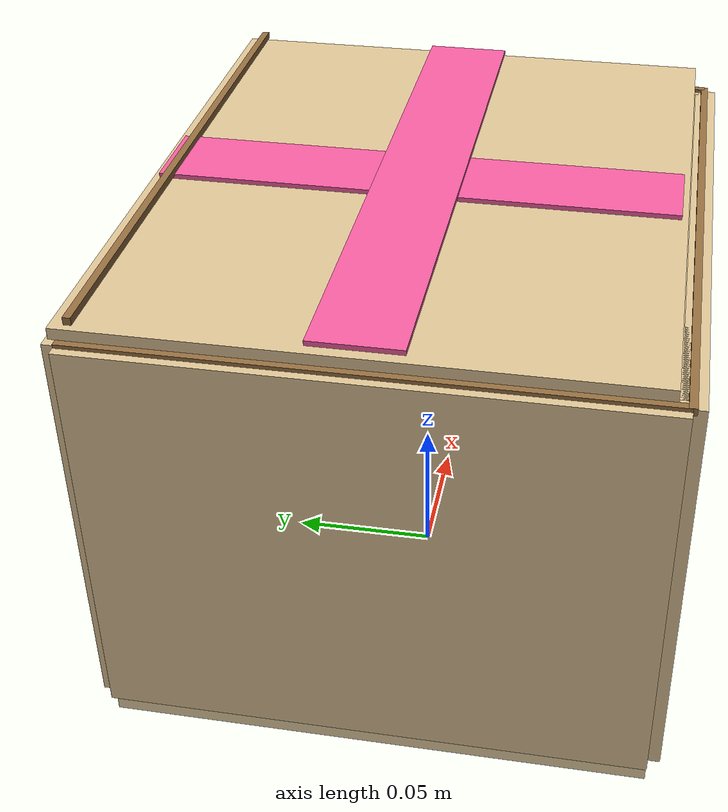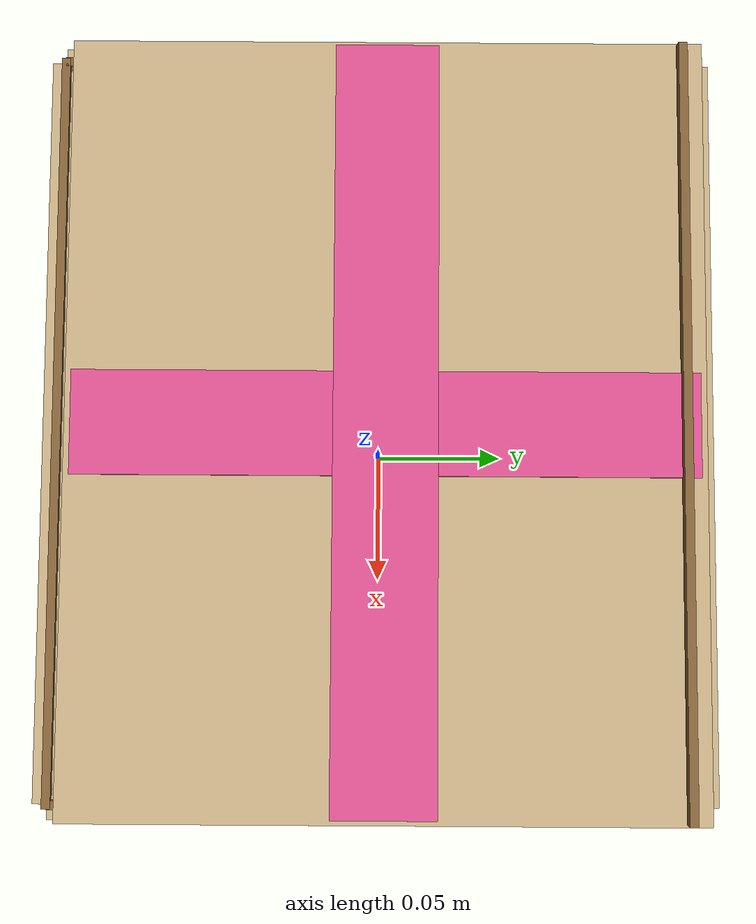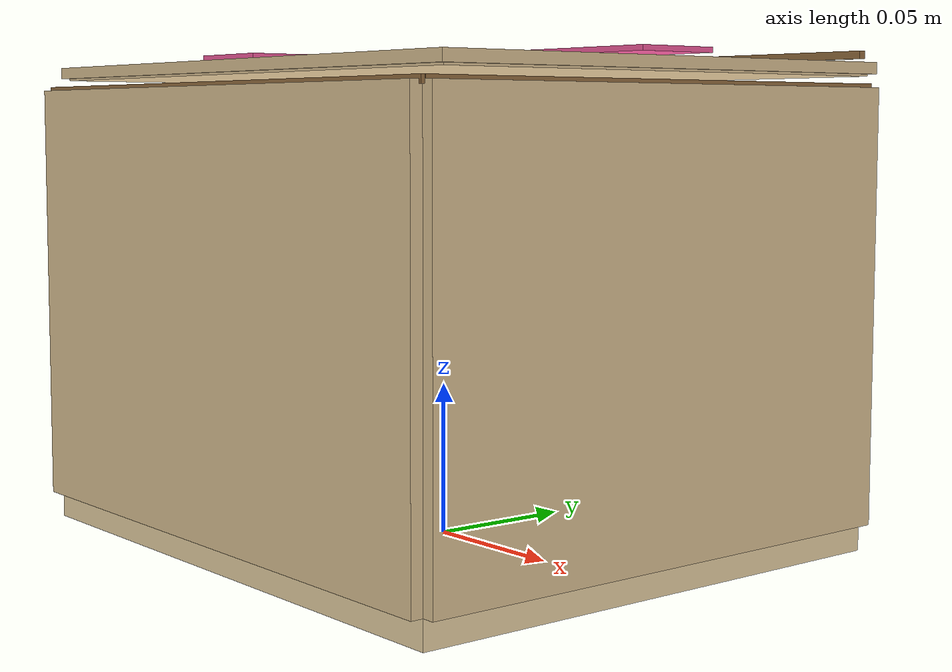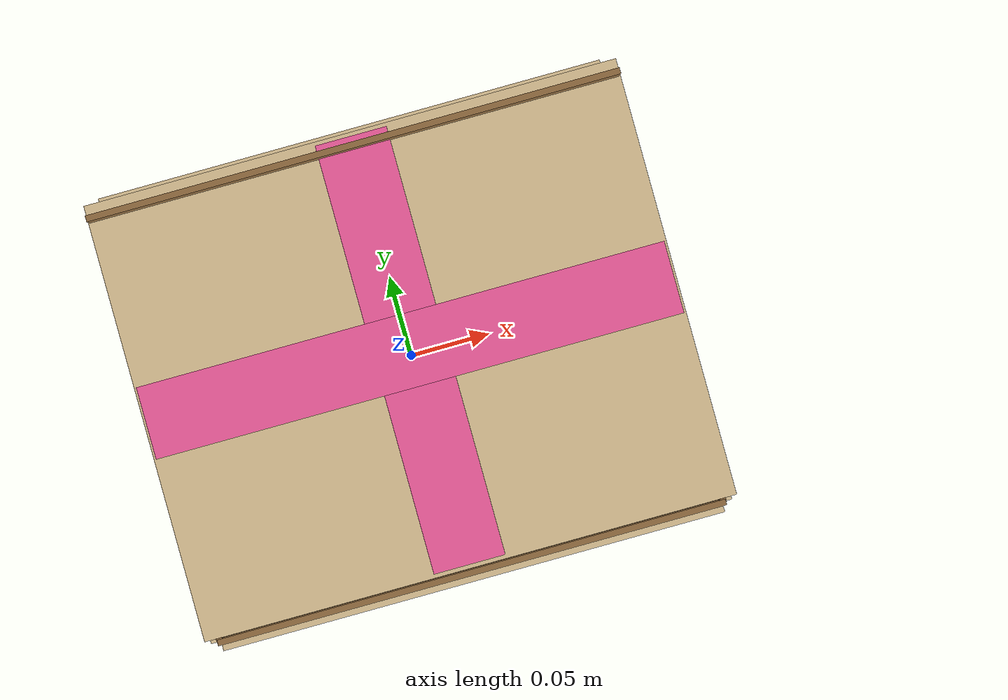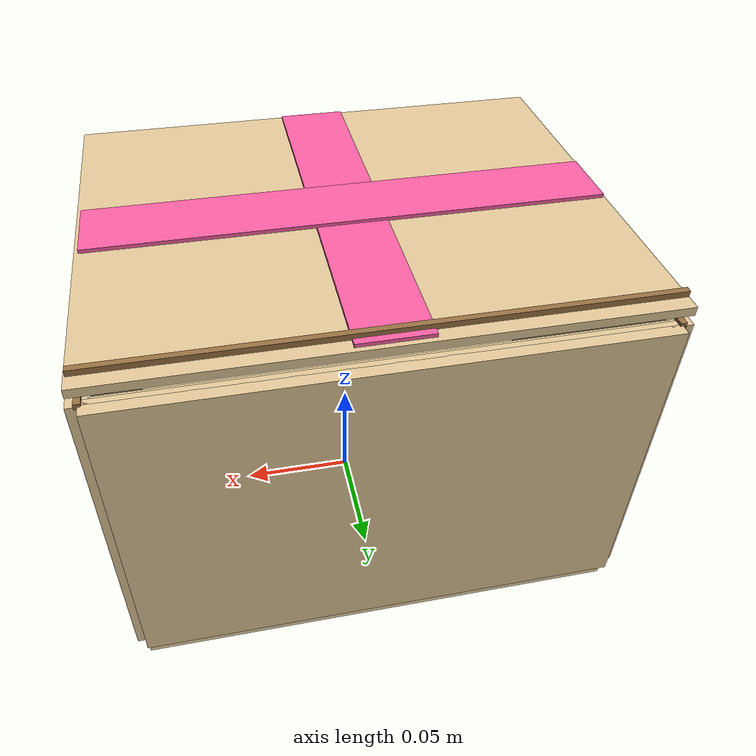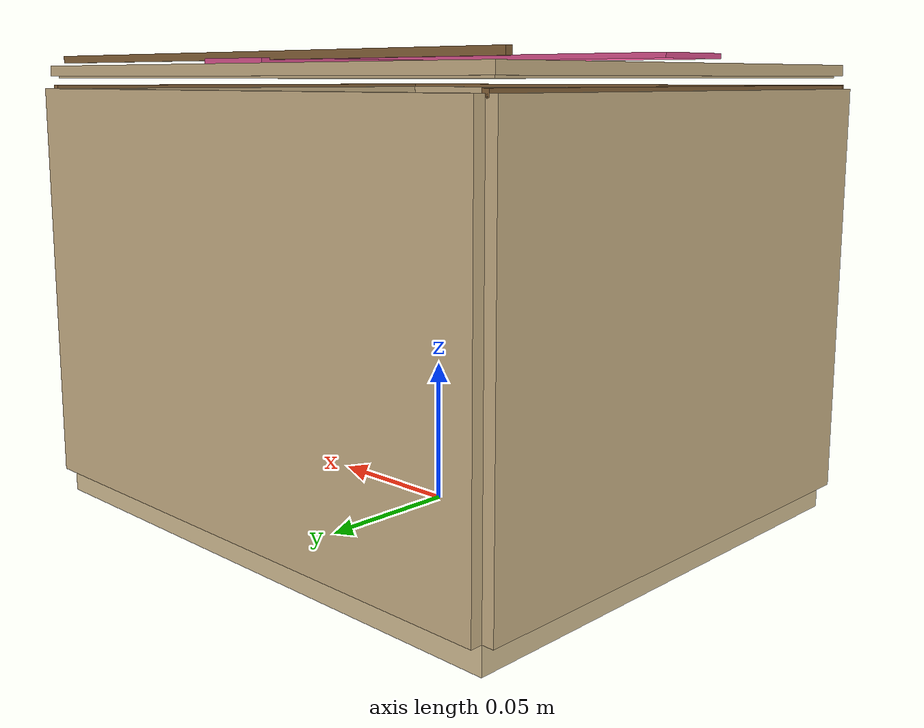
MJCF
<mujoco model="ceramic_gift_box">
  <compiler angle="radian" />
  <asset>
    <material name="gift_box_outer" rgba="0.86 0.76 0.58 1" specular="0.02" shininess="0.02" />
    <material name="gift_box_inner" rgba="0.91 0.82 0.64 1" specular="0.015" shininess="0.015" />
    <material name="gift_box_edge" rgba="0.58 0.43 0.25 1" specular="0.01" shininess="0.01" />
    <material name="gift_box_ribbon" rgba="0.95 0.36 0.62 1" specular="0.03" shininess="0.04" />
  </asset>
  <worldbody>
    <body>
      <body name="object">
        <site name="contain_region" type="box" pos="0 0 0.090" quat="1 0 0 0" size="0.094 0.080 0.076" rgba="0 0 0 0" />

        <geom name="box_bottom_collision" type="box" pos="0 0 0.020" size="0.102 0.088 0.020" material="gift_box_inner" group="0" friction="0.95 0.3 0.1" />
        <geom name="box_front_collision" type="box" pos="0 -0.088 0.078" size="0.102 0.0040 0.069" material="gift_box_outer" group="0" friction="1.05 0.35 0.1" solref="0.010 1" solimp="0.90 0.98 0.001" />
        <geom name="box_back_collision" type="box" pos="0 0.088 0.078" size="0.102 0.0040 0.069" material="gift_box_outer" group="0" friction="1.05 0.35 0.1" solref="0.010 1" solimp="0.90 0.98 0.001" />
        <geom name="box_left_collision" type="box" pos="-0.102 0 0.078" size="0.0040 0.088 0.069" material="gift_box_outer" group="0" friction="1.05 0.35 0.1" solref="0.010 1" solimp="0.90 0.98 0.001" />
        <geom name="box_right_collision" type="box" pos="0.102 0 0.078" size="0.0040 0.088 0.069" material="gift_box_outer" group="0" friction="1.05 0.35 0.1" solref="0.010 1" solimp="0.90 0.98 0.001" />

        <geom name="box_bottom_visual" type="box" pos="0 0 0.020" size="0.101 0.087 0.020" material="gift_box_inner" group="1" contype="0" conaffinity="0" />
        <geom name="box_inner_floor_visual" type="box" pos="0 0 0.044" size="0.094 0.080 0.005" material="gift_box_inner" group="1" contype="0" conaffinity="0" />
        <geom name="box_front_visual" type="box" pos="0 -0.086 0.079" size="0.101 0.0012 0.068" material="gift_box_outer" group="1" contype="0" conaffinity="0" />
        <geom name="box_back_visual" type="box" pos="0 0.086 0.079" size="0.101 0.0012 0.068" material="gift_box_outer" group="1" contype="0" conaffinity="0" />
        <geom name="box_left_visual" type="box" pos="-0.100 0 0.079" size="0.0012 0.087 0.068" material="gift_box_outer" group="1" contype="0" conaffinity="0" />
        <geom name="box_right_visual" type="box" pos="0.100 0 0.079" size="0.0012 0.087 0.068" material="gift_box_outer" group="1" contype="0" conaffinity="0" />

        <geom name="front_ribbon_visual" type="box" pos="0 -0.0874 0.081" size="0.014 0.0008 0.059" material="gift_box_ribbon" group="1" contype="0" conaffinity="0" />
        <geom name="left_ribbon_visual" type="box" pos="-0.1014 0 0.081" size="0.0008 0.014 0.059" material="gift_box_ribbon" group="1" contype="0" conaffinity="0" />
        <geom name="right_ribbon_visual" type="box" pos="0.1014 0 0.081" size="0.0008 0.014 0.059" material="gift_box_ribbon" group="1" contype="0" conaffinity="0" />

        <geom name="front_top_edge_visual" type="box" pos="0 -0.088 0.147" size="0.103 0.0012 0.0012" material="gift_box_edge" group="1" contype="0" conaffinity="0" />
        <geom name="left_top_edge_visual" type="box" pos="-0.102 0 0.147" size="0.0012 0.088 0.0012" material="gift_box_edge" group="1" contype="0" conaffinity="0" />
        <geom name="right_top_edge_visual" type="box" pos="0.102 0 0.147" size="0.0012 0.088 0.0012" material="gift_box_edge" group="1" contype="0" conaffinity="0" />

        <body name="lid_hinge_body" pos="0 0.088 0.148">
          <joint name="lid_hinge" type="hinge" pos="0 0 0" axis="1 0 0" limited="true" range="-2.75 0.02" damping="3.5" armature="0.003" frictionloss="0.018" />
          <geom name="attached_lid_collision" type="box" pos="0 -0.086 0.004" size="0.103 0.084 0.0015" material="gift_box_outer" group="0" friction="1.0 0.3 0.1" mass="0.014" />
          <geom name="attached_lid_visual" type="box" pos="0 -0.086 0.005" size="0.105 0.086 0.0018" material="gift_box_outer" group="1" contype="0" conaffinity="0" />
          <geom name="lid_ribbon_vertical_visual" type="box" pos="0 -0.086 0.0075" size="0.014 0.084 0.0008" material="gift_box_ribbon" group="1" contype="0" conaffinity="0" />
          <geom name="lid_ribbon_horizontal_visual" type="box" pos="0 -0.086 0.0088" size="0.103 0.014 0.0008" material="gift_box_ribbon" group="1" contype="0" conaffinity="0" />
          <geom name="lid_fold_line" type="box" pos="0 -0.006 0.009" size="0.104 0.0012 0.0012" material="gift_box_edge" group="1" contype="0" conaffinity="0" />
        </body>
      </body>
      <site rgba="0 0 0 0" size="0.005" pos="0 0 -0.004" name="bottom_site" />
      <site rgba="0 0 0 0" size="0.005" pos="0 0 0.158" name="top_site" />
      <site rgba="0 0 0 0" size="0.116" pos="0.116 0.116 0" name="horizontal_radius_site" />
    </body>
  </worldbody>
</mujoco>
